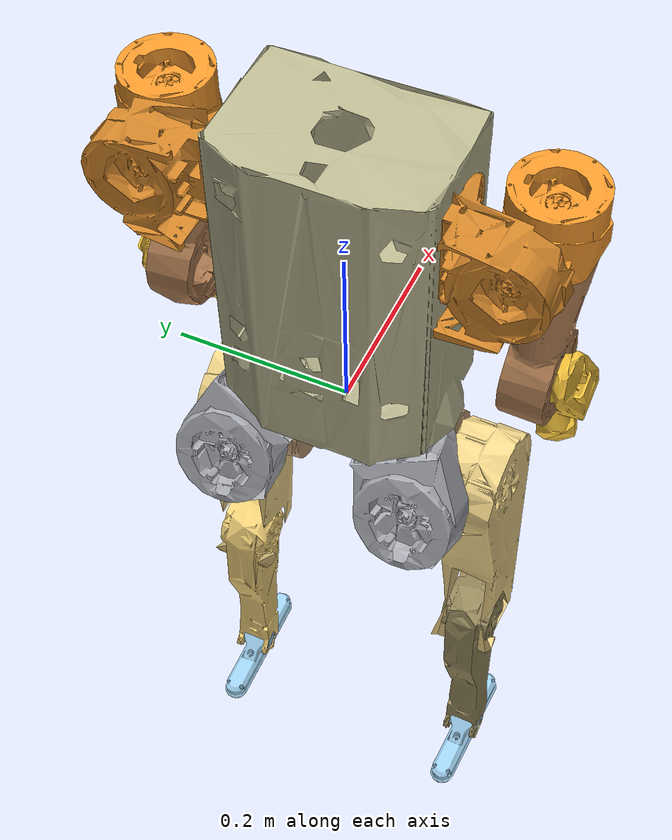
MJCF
<mujoco model="dash">
  <compiler angle="radian" meshdir="assets" autolimits="true"/>

  <default>
    <default class="dash">
      <default class="visual">
        <geom type="mesh" group="2" contype="0" conaffinity="0" density="0"/>
      </default>
      <default class="collision">
        <geom group="3" contype="1" conaffinity="1" density="0"/>
      </default>
    </default>
  </default>

  <asset>
    <mesh name="Torso" file="Torso.stl"/>
    <mesh name="R_hip" file="R_hip.stl"/>
    <mesh name="R_dist_hip" file="R_dist_hip.stl"/>
    <mesh name="R_upper_leg" file="R_upper_leg.stl"/>
    <mesh name="R_lower_leg" file="R_lower_leg.stl"/>
    <mesh name="R_foot" file="R_foot.stl"/>
    <mesh name="L_hip" file="L_hip.stl"/>
    <mesh name="L_dist_hip" file="L_dist_hip.stl"/>
    <mesh name="L_upper_leg" file="L_upper_leg.stl"/>
    <mesh name="L_lower_leg" file="L_lower_leg.stl"/>
    <mesh name="L_foot" file="L_foot.stl"/>
    <mesh name="R_prox_shoulder" file="R_prox_shoulder.stl"/>
    <mesh name="R_dist_shoulder" file="R_dist_shoulder.stl"/>
    <mesh name="R_upper_arm" file="R_upper_arm.stl"/>
    <mesh name="R_lower_arm" file="R_lower_arm.stl"/>
    <mesh name="L_prox_shoulder" file="L_prox_shoulder.stl"/>
    <mesh name="L_dist_shoulder" file="L_dist_shoulder.stl"/>
    <mesh name="L_upper_arm" file="L_upper_arm.stl"/>
    <mesh name="L_lower_arm" file="L_lower_arm.stl"/>
  </asset>

  <worldbody>
    <body name="torso" childclass="dash">
      <inertial pos="0.00593411 -3.00183e-05 0.163011" quat="0.99966 -6.30433e-05 0.0260827 -0.000344135" mass="10.8104" diaginertia="0.203306 0.165966 0.0687363"/>
      <freejoint name="floating_base_joint"/>
      <geom class="visual" name="torso_visual" rgba="0.723666 0.709829 0.56081 1" mesh="Torso"/>
      <geom class="collision" name="torso_collision" type="box" pos="0 0 0.17" size="0.08 0.13 0.19"/>

      <site name="imu_in_torso" size="0.01" pos="0.006 -0.085 0.19"/>

      <body name="r_hip" pos="0.00079603 -0.0747464 0.000544" quat="0.976296 -0.216438 0 0">
        <inertial pos="-0.06169 -0.00013798 -0.0674385" quat="0.96016 0.0516852 0.270974 0.0446536" mass="1.66549" diaginertia="0.00431826 0.00318456 0.00217457"/>
        <joint name="r_hip_yaw" axis="0 0 1" range="-0.3 0.2" actuatorfrcrange="-10 10"/>
        <geom class="visual" name="r_hip_visual" rgba="0.683259 0.689928 0.717554 1" mesh="R_hip"/>
        <geom class="collision" name="r_hip_collision" type="capsule" fromto="-0.05 0 -0.01 -0.05 0 -0.115" size="0.055"/>
        <body name="r_dist_hip" pos="-0.0527293 0.00277237 -0.081917" quat="0.963424 0.203188 0.173047 0.0241648">
          <inertial pos="0.0809441 0.0190504 0.00041627" quat="0.446134 0.470738 0.54063 0.535807" mass="1.80153" diaginertia="0.00478847 0.00367549 0.00220033"/>
          <joint name="r_hip_roll" axis="1 0 0" range="-0.2 0.2" actuatorfrcrange="-10 10"/>
          <geom class="visual" name="r_dist_hip_visual" rgba="0.744736 0.611754 0.454058 1" mesh="R_dist_hip"/>
          <geom class="collision" name="r_dist_hip_collision" type="capsule" fromto="0.025 0 0 0.13 0.005 0" size="0.05"/>
          <body name="r_upper_leg" pos="0.0953 0.0053 0" quat="0.986455 0 -0.164029 0">
            <inertial pos="0.00324991 -0.0459999 -0.0533371" quat="0.706871 -0.0163835 -0.0313558 0.706457" mass="2.55931" diaginertia="0.0239573 0.0226365 0.00427118"/>
            <joint name="r_hip_pitch" axis="0 1 0" range="-1.0 0.4" actuatorfrcrange="-10 10"/>
            <geom class="visual" name="r_upper_leg_visual" rgba="0.943618 0.833243 0.539452 1" mesh="R_upper_leg"/>
            <geom class="collision" name="r_upper_leg_collision" type="capsule" fromto="0 -0.02 -0.02 0 -0.04245 -0.255" size="0.052"/>
            <body name="r_lower_leg" pos="0 -0.04245 -0.28">
              <inertial pos="0.00122235 0.0492546 0.0355025" quat="0.707163 -0.00594181 -0.000429317 0.707026" mass="1.18115" diaginertia="0.00883365 0.00857462 0.000823104"/>
              <joint name="r_knee_pitch" axis="0 1 0" range="0 1.5" actuatorfrcrange="-10 10"/>
              <geom class="visual" name="r_lower_leg_visual" rgba="0.595371 0.542381 0.364753 1" mesh="R_lower_leg"/>
              <geom class="collision" name="r_lower_leg_collision" type="capsule" fromto="0 0 -0.025 0 0 -0.255" size="0.038"/>
              <body name="r_foot" pos="0 0.00034598 -0.28">
                <inertial pos="-0.00130449 -0.0228546 0.0226724" quat="0.515874 0.483605 0.515874 0.483605" mass="0.283056" diaginertia="0.000656907 0.000623973 7.323e-05"/>
                <joint name="r_ankle_pitch" axis="0 1 0" range="-0.7 0.3" actuatorfrcrange="-10 10"/>
                <geom class="visual" name="r_foot_visual" rgba="0.615686 0.811765 0.929412 1" mesh="R_foot"/>
                <geom class="collision" name="r_foot_collision" type="box" pos="0 0 -0.04" size="0.1 0.0375 0.0125"/>
                <site name="r_foot" pos="0 0 -0.0525"/>
              </body>
            </body>
          </body>
        </body>
      </body>

      <body name="l_hip" pos="0.00079603 0.0747464 0.000544" quat="0.976296 0.216438 0 0">
        <inertial pos="-0.0616906 0.00016143 -0.0674489" quat="0.960165 -0.0514451 0.271086 -0.0441399" mass="1.66549" diaginertia="0.00431875 0.0031844 0.00217475"/>
        <joint name="l_hip_yaw" axis="0 0 1" range="-0.2 0.3" actuatorfrcrange="-10 10"/>
        <geom class="visual" name="l_hip_visual" rgba="0.683259 0.689928 0.717554 1" mesh="L_hip"/>
        <geom class="collision" name="l_hip_collision" type="capsule" fromto="-0.05 0 -0.01 -0.05 0 -0.115" size="0.055"/>
        <body name="l_dist_hip" pos="-0.05273 -0.00277237 -0.081917" quat="0.963424 -0.203188 0.173047 -0.0241648">
          <inertial pos="0.0809443 -0.0190505 0.00041627" quat="0.536288 0.540159 0.470481 0.446399" mass="1.80153" diaginertia="0.00478845 0.00367534 0.00220041"/>
          <joint name="l_hip_roll" axis="1 0 0" range="-0.2 0.2" actuatorfrcrange="-10 10"/>
          <geom class="visual" name="l_dist_hip_visual" rgba="0.744736 0.611754 0.454058 1" mesh="L_dist_hip"/>
          <geom class="collision" name="l_dist_hip_collision" type="capsule" fromto="0.025 0 0 0.13 -0.005 0" size="0.05"/>
          <body name="l_upper_leg" pos="0.0953 -0.0053 0" quat="0.986455 0 -0.164029 0">
            <inertial pos="0.00340206 0.0459999 -0.0533371" quat="0.709726 -0.0309103 -0.0161251 0.703615" mass="2.55931" diaginertia="0.0239548 0.0226336 0.00427128"/>
            <joint name="l_hip_pitch" axis="0 1 0" range="-1.0 0.4" actuatorfrcrange="-10 10"/>
            <geom class="visual" name="l_upper_leg_visual" rgba="0.943618 0.833243 0.539452 1" mesh="L_upper_leg"/>
            <geom class="collision" name="l_upper_leg_collision" type="capsule" fromto="0 0.02 -0.02 0 0.04245 -0.255" size="0.052"/>
            <body name="l_lower_leg" pos="0 0.04245 -0.28">
              <inertial pos="0.00124297 -0.00087817 -0.0492506" quat="0.707019 -0.00033563 -0.00588715 0.70717" mass="1.18115" diaginertia="0.00883332 0.00857426 0.000823126"/>
              <joint name="l_knee_pitch" axis="0 1 0" range="0 1.5" actuatorfrcrange="-10 10"/>
              <geom class="visual" name="l_lower_leg_visual" rgba="0.948139 0.818548 0.473607 1" mesh="L_lower_leg"/>
              <geom class="collision" name="l_lower_leg_collision" type="capsule" fromto="0 0 -0.025 0 0 -0.255" size="0.038"/>
              <body name="l_foot" pos="0 0.00034598 -0.28">
                <inertial pos="0 -0.00032762 -0.0228918" quat="0.483605 0.515874 0.483605 0.515874" mass="0.283056" diaginertia="0.000656907 0.000623973 7.323e-05"/>
                <joint name="l_ankle_pitch" axis="0 1 0" range="-0.7 0.3" actuatorfrcrange="-10 10"/>
                <geom class="visual" name="l_foot_visual" rgba="0.615686 0.811765 0.929412 1" mesh="L_foot"/>
                <geom class="collision" name="l_foot_collision" type="box" pos="0 0 -0.04" size="0.1 0.0375 0.0125"/>
                <site name="l_foot" pos="0 0 -0.0525"/>
              </body>
            </body>
          </body>
        </body>
      </body>

      <body name="r_prox_shoulder" pos="0.020796 -0.1117 0.3">
        <inertial pos="-0.0638541 -0.0594545 -8.464e-05" quat="0.68734 0.692062 -0.155178 -0.156633" mass="1.26433" diaginertia="0.00271013 0.00210315 0.0017068"/>
        <joint name="r_shoulder_pitch" axis="0 1 0" range="-0.6 1.1" actuatorfrcrange="-10 10"/>
        <geom class="visual" name="r_prox_shoulder_visual" rgba="0.819914 0.51932 0.162864 1" mesh="R_prox_shoulder"/>
        <body name="r_dist_shoulder" pos="-0.05 -0.0713 0">
          <inertial pos="0.0551627 -0.0110152 0.0187494" quat="0.0956691 0.63929 -0.0866565 0.758054" mass="1.02859" diaginertia="0.00166989 0.00125774 0.00103113"/>
          <joint name="r_shoulder_roll" axis="1 0 0" range="-0.6 0.3" actuatorfrcrange="-10 10"/>
          <geom class="visual" name="r_dist_shoulder_visual" rgba="0.954951 0.592636 0.169477 1" mesh="R_dist_shoulder"/>
          <body name="r_upper_arm" pos="0.0605 -0.012 0.002">
            <inertial pos="-2.136e-07 -0.00212635 -0.156389" quat="0.707066 -0.00754832 0.00754832 0.707066" mass="1.50071" diaginertia="0.00970874 0.00919509 0.00162113"/>
            <joint name="r_shoulder_yaw" axis="0 0 1" range="-0.8 0.8" actuatorfrcrange="-10 10"/>
            <geom class="visual" name="r_upper_arm_visual" rgba="0.654942 0.465554 0.304724 1" mesh="R_upper_arm"/>
            <geom class="collision" name="r_upper_arm_collision" type="capsule" fromto="0 0 -0.03 0 -0.02 -0.185" size="0.042"/>
            <body name="r_lower_arm" pos="0 -0.023775 -0.2025" quat="0.968912 0 -0.247404 0">
              <inertial pos="-3e-08 0.0082445 -0.103214" quat="0.997346 0.0728135 0 0" mass="0.339126" diaginertia="0.00278269 0.00278265 0.000126918"/>
              <joint name="r_elbow_pitch" axis="0 1 0" range="-1.5 0" actuatorfrcrange="-10 10"/>
              <geom class="visual" name="r_lower_arm_visual" rgba="0.954585 0.75822 0.229953 1" mesh="R_lower_arm"/>
              <geom class="collision" name="r_lower_arm_collision" type="capsule" fromto="0 0.008 -0.015 0 0.008 -0.25" size="0.03"/>
            </body>
          </body>
        </body>
      </body>

      <body name="l_prox_shoulder" pos="0.020796 0.112 0.3">
        <inertial pos="-0.0638541 0.0594541 -8.46e-05" quat="0.692069 0.687332 0.15663 0.155183" mass="1.26433" diaginertia="0.0027101 0.00210313 0.00170681"/>
        <joint name="l_shoulder_pitch" axis="0 1 0" range="-0.6 1.1" actuatorfrcrange="-10 10"/>
        <geom class="visual" name="l_prox_shoulder_visual" rgba="0.819914 0.51932 0.162864 1" mesh="L_prox_shoulder"/>
        <body name="l_dist_shoulder" pos="-0.05 0.0713 0">
          <inertial pos="0.0551627 0.0108105 0.0187494" quat="-0.0885499 0.639868 0.0872463 0.758364" mass="1.02859" diaginertia="0.00166915 0.00125704 0.00103166"/>
          <joint name="l_shoulder_roll" axis="1 0 0" range="-0.3 0.6" actuatorfrcrange="-10 10"/>
          <geom class="visual" name="l_dist_shoulder_visual" rgba="0.954951 0.592636 0.169477 1" mesh="L_dist_shoulder"/>
          <body name="l_upper_arm" pos="0.0605 0.012 0.002">
            <inertial pos="-2.027e-07 0.00212635 -0.156249" quat="0.707064 0.00774823 -0.00774636 0.707064" mass="1.50071" diaginertia="0.00968948 0.00917565 0.00162095"/>
            <joint name="l_shoulder_yaw" axis="0 0 1" range="-0.8 0.8" actuatorfrcrange="-10 10"/>
            <geom class="visual" name="l_upper_arm_visual" rgba="0.654942 0.465554 0.304724 1" mesh="L_upper_arm"/>
            <geom class="collision" name="l_upper_arm_collision" type="capsule" fromto="0 0 -0.03 0 0.02 -0.185" size="0.042"/>
            <body name="l_lower_arm" pos="0 0.023775 -0.2025" quat="0.968912 0 -0.247404 0">
              <inertial pos="-3e-08 0.0082445 -0.103214" quat="0.997346 -0.0728135 0 0" mass="0.339126" diaginertia="0.00278269 0.00278265 0.000126918"/>
              <joint name="l_elbow_pitch" axis="0 1 0" range="-1.5 0" actuatorfrcrange="-10 10"/>
              <geom class="visual" name="l_lower_arm_visual" rgba="0.954585 0.75822 0.229953 1" mesh="L_lower_arm"/>
              <geom class="collision" name="l_lower_arm_collision" type="capsule" fromto="0 0.008 -0.015 0 0.008 -0.25" size="0.03"/>
            </body>
          </body>
        </body>
      </body>
    </body>
  </worldbody>

  <contact>
    <exclude body1="r_hip" body2="r_upper_leg"/>
    <exclude body1="l_hip" body2="l_upper_leg"/>
  </contact>

  <sensor>
    <gyro name="imu_ang_vel" site="imu_in_torso"/>
    <velocimeter name="imu_lin_vel" site="imu_in_torso"/>
    <accelerometer name="imu_lin_acc" site="imu_in_torso"/>
    <framezaxis name="imu_upvector" objtype="body" objname="world" reftype="site" refname="imu_in_torso"/>
    <subtreeangmom name="root_angmom" body="torso"/>
  </sensor>
</mujoco>
